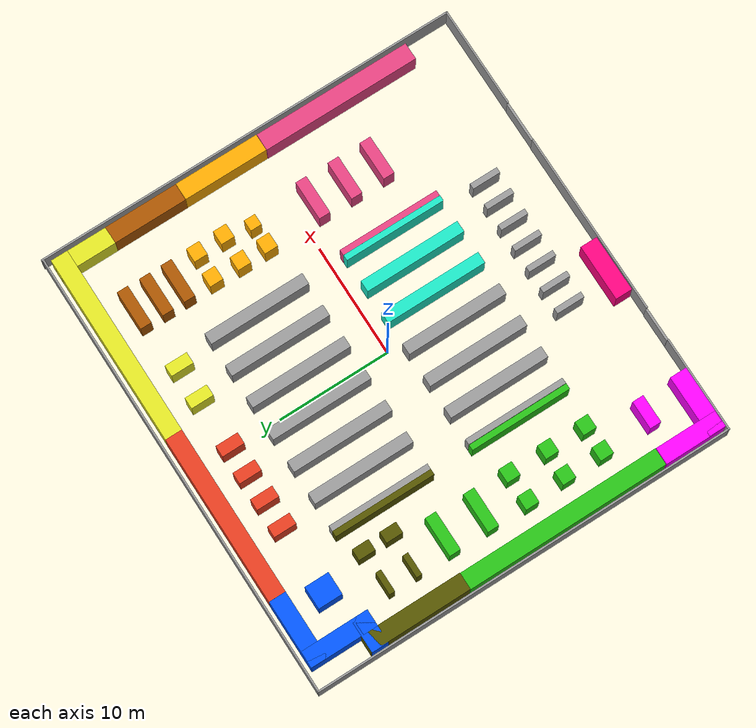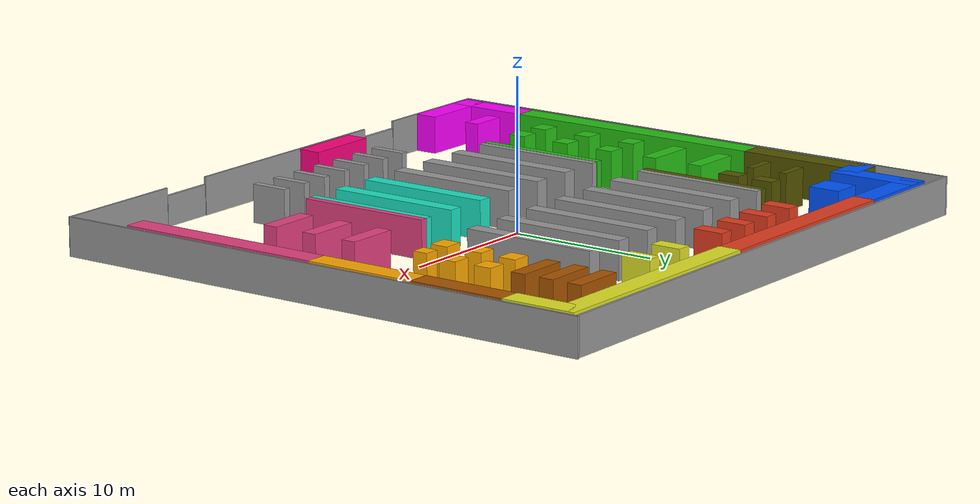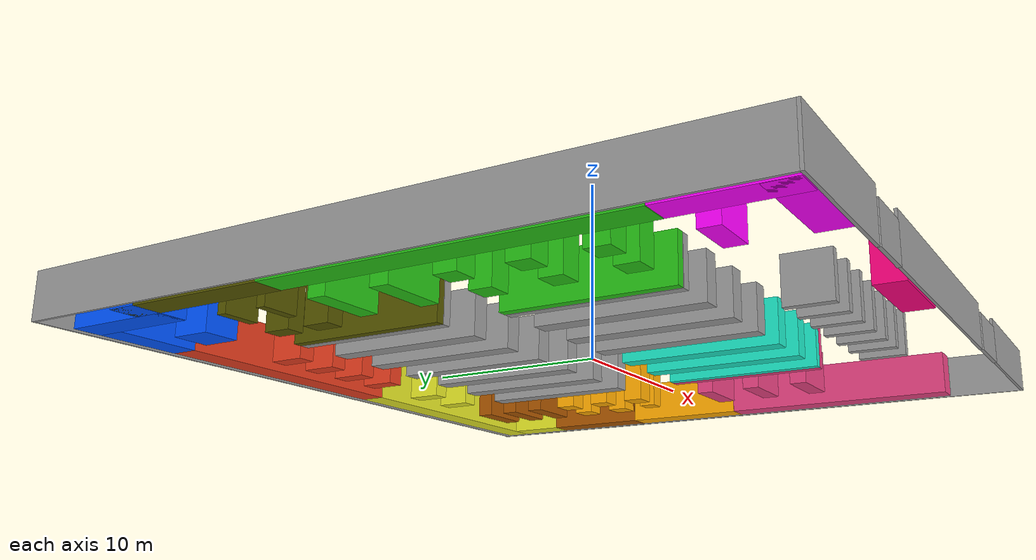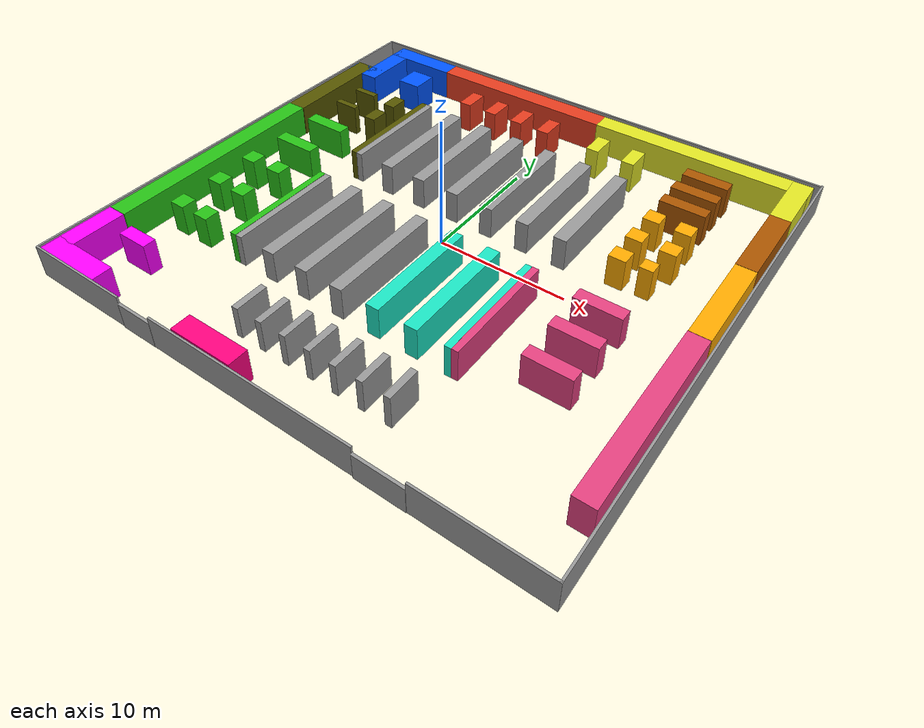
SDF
<?xml version='1.0'?>
<sdf version='1.6'>
  <model name='grocerystore'>
    <pose frame=''>0.320498 0.186481 0 0 -0 0</pose>
    <link name='Door_0'>
      <collision name='Door_0_Collision'>
        <geometry>
          <box>
            <size>2.95862 0.2 2</size>
          </box>
        </geometry>
        <pose frame=''>0 0 1 0 -0 0</pose>
      </collision>
      <visual name='Door_0_Visual'>
        <pose frame=''>0 0 1 0 -0 0</pose>
        <geometry>
          <box>
            <size>2.95862 0.2 2</size>
          </box>
        </geometry>
        <material>
          <script>
            <uri>file://media/materials/scripts/gazebo.material</uri>
            <name>Gazebo/Grey</name>
          </script>
        </material>
      </visual>
      <pose frame=''>-10.1572 -18.8323 0 0 -0 0</pose>
    </link>
    <link name='Door_3'>
      <collision name='Door_3_Collision'>
        <geometry>
          <box>
            <size>3.60628 0.2 2</size>
          </box>
        </geometry>
        <pose frame=''>0 0 1 0 -0 0</pose>
      </collision>
      <visual name='Door_3_Visual'>
        <pose frame=''>0 0 1 0 -0 0</pose>
        <geometry>
          <box>
            <size>3.60628 0.2 2</size>
          </box>
        </geometry>
        <material>
          <script>
            <uri>file://media/materials/scripts/gazebo.material</uri>
            <name>Gazebo/Grey</name>
          </script>
        </material>
      </visual>
      <pose frame=''>9.38661 -18.8926 0 0 -0 0</pose>
    </link>
    <link name='Wall_100'>
      <collision name='Wall_100_Collision'>
        <geometry>
          <box>
            <size>3.5 1 2.5</size>
          </box>
        </geometry>
        <pose frame=''>0 0 1.25 0 -0 0</pose>
      </collision>
      <visual name='Wall_100_Visual'>
        <pose frame=''>0 0 1.25 0 -0 0</pose>
        <geometry>
          <box>
            <size>3.5 1 2.5</size>
          </box>
        </geometry>
        <material>
          <script>
            <uri>file://media/materials/scripts/gazebo.material</uri>
            <name>Gazebo/Grey</name>
          </script>
          <ambient>0.898039 0.254902 0.501961 1</ambient>
        </material>
        <meta>
          <layer>0</layer>
        </meta>
      </visual>
      <pose frame=''>12.9425 -7.67253 0 0 -0 0</pose>
    </link>
    <link name='Wall_102'>
      <collision name='Wall_102_Collision'>
        <geometry>
          <box>
            <size>1.25 1.2 2.5</size>
          </box>
        </geometry>
        <pose frame=''>0 0 1.25 0 -0 0</pose>
      </collision>
      <visual name='Wall_102_Visual'>
        <pose frame=''>0 0 1.25 0 -0 0</pose>
        <geometry>
          <box>
            <size>1.25 1.2 2.5</size>
          </box>
        </geometry>
        <material>
          <script>
            <uri>file://media/materials/scripts/gazebo.material</uri>
            <name>Gazebo/Grey</name>
          </script>
          <ambient>0.152941 0.756863 0.0862745 1</ambient>
        </material>
        <meta>
          <layer>0</layer>
        </meta>
      </visual>
      <pose frame=''>-16.3412 -2.71739 0 0 -0 0</pose>
    </link>
    <link name='Wall_104'>
      <collision name='Wall_104_Collision'>
        <geometry>
          <box>
            <size>1.25 1.2 2.5</size>
          </box>
        </geometry>
        <pose frame=''>0 0 1.25 0 -0 0</pose>
      </collision>
      <visual name='Wall_104_Visual'>
        <pose frame=''>0 0 1.25 0 -0 0</pose>
        <geometry>
          <box>
            <size>1.25 1.2 2.5</size>
          </box>
        </geometry>
        <material>
          <script>
            <uri>file://media/materials/scripts/gazebo.material</uri>
            <name>Gazebo/Grey</name>
          </script>
          <ambient>0.152941 0.756863 0.0862745 1</ambient>
        </material>
        <meta>
          <layer>0</layer>
        </meta>
      </visual>
      <pose frame=''>-13.7856 -2.6616 0 0 -0 0</pose>
    </link>
    <link name='Wall_106'>
      <collision name='Wall_106_Collision'>
        <geometry>
          <box>
            <size>1.25 1.2 2.5</size>
          </box>
        </geometry>
        <pose frame=''>0 0 1.25 0 -0 0</pose>
      </collision>
      <visual name='Wall_106_Visual'>
        <pose frame=''>0 0 1.25 0 -0 0</pose>
        <geometry>
          <box>
            <size>1.25 1.2 2.5</size>
          </box>
        </geometry>
        <material>
          <script>
            <uri>file://media/materials/scripts/gazebo.material</uri>
            <name>Gazebo/Grey</name>
          </script>
          <ambient>0.152941 0.756863 0.0862745 1</ambient>
        </material>
        <meta>
          <layer>0</layer>
        </meta>
      </visual>
      <pose frame=''>-16.2622 -6.17231 0 0 -0 0</pose>
    </link>
    <link name='Wall_108'>
      <collision name='Wall_108_Collision'>
        <geometry>
          <box>
            <size>1.25 1.2 2.5</size>
          </box>
        </geometry>
        <pose frame=''>0 0 1.25 0 -0 0</pose>
      </collision>
      <visual name='Wall_108_Visual'>
        <pose frame=''>0 0 1.25 0 -0 0</pose>
        <geometry>
          <box>
            <size>1.25 1.2 2.5</size>
          </box>
        </geometry>
        <material>
          <script>
            <uri>file://media/materials/scripts/gazebo.material</uri>
            <name>Gazebo/Grey</name>
          </script>
          <ambient>0.152941 0.756863 0.0862745 1</ambient>
        </material>
        <meta>
          <layer>0</layer>
        </meta>
      </visual>
      <pose frame=''>-13.8442 -6.18548 0 0 -0 0</pose>
    </link>
    <link name='Wall_110'>
      <collision name='Wall_110_Collision'>
        <geometry>
          <box>
            <size>1.25 1.2 2.5</size>
          </box>
        </geometry>
        <pose frame=''>0 0 1.25 0 -0 0</pose>
      </collision>
      <visual name='Wall_110_Visual'>
        <pose frame=''>0 0 1.25 0 -0 0</pose>
        <geometry>
          <box>
            <size>1.25 1.2 2.5</size>
          </box>
        </geometry>
        <material>
          <script>
            <uri>file://media/materials/scripts/gazebo.material</uri>
            <name>Gazebo/Grey</name>
          </script>
          <ambient>0.152941 0.756863 0.0862745 1</ambient>
        </material>
        <meta>
          <layer>0</layer>
        </meta>
      </visual>
      <pose frame=''>-16.2411 -9.66304 0 0 -0 0</pose>
    </link>
    <link name='Wall_112'>
      <collision name='Wall_112_Collision'>
        <geometry>
          <box>
            <size>1.25 1.2 2.5</size>
          </box>
        </geometry>
        <pose frame=''>0 0 1.25 0 -0 0</pose>
      </collision>
      <visual name='Wall_112_Visual'>
        <pose frame=''>0 0 1.25 0 -0 0</pose>
        <geometry>
          <box>
            <size>1.25 1.2 2.5</size>
          </box>
        </geometry>
        <material>
          <script>
            <uri>file://media/materials/scripts/gazebo.material</uri>
            <name>Gazebo/Grey</name>
          </script>
          <ambient>0.152941 0.756863 0.0862745 1</ambient>
        </material>
        <meta>
          <layer>0</layer>
        </meta>
      </visual>
      <pose frame=''>-13.8543 -9.66304 0 0 -0 0</pose>
    </link>
    <link name='Wall_114'>
      <collision name='Wall_114_Collision'>
        <geometry>
          <box>
            <size>2 0.5 2.5</size>
          </box>
        </geometry>
        <pose frame=''>0 0 1.25 0 -0 0</pose>
      </collision>
      <visual name='Wall_114_Visual'>
        <pose frame=''>0 0 1.25 0 -0 0</pose>
        <geometry>
          <box>
            <size>2 0.5 2.5</size>
          </box>
        </geometry>
        <material>
          <script>
            <uri>file://media/materials/scripts/gazebo.material</uri>
            <name>Gazebo/Grey</name>
          </script>
          <ambient>0.333333 0.333333 0 1</ambient>
        </material>
        <meta>
          <layer>0</layer>
        </meta>
      </visual>
      <pose frame=''>-15.8039 10.0223 0 0 -0 0</pose>
    </link>
    <link name='Wall_116'>
      <collision name='Wall_116_Collision'>
        <geometry>
          <box>
            <size>2 0.5 2.5</size>
          </box>
        </geometry>
        <pose frame=''>0 0 1.25 0 -0 0</pose>
      </collision>
      <visual name='Wall_116_Visual'>
        <pose frame=''>0 0 1.25 0 -0 0</pose>
        <geometry>
          <box>
            <size>2 0.5 2.5</size>
          </box>
        </geometry>
        <material>
          <script>
            <uri>file://media/materials/scripts/gazebo.material</uri>
            <name>Gazebo/Grey</name>
          </script>
          <ambient>0.333333 0.333333 0 1</ambient>
        </material>
        <meta>
          <layer>0</layer>
        </meta>
      </visual>
      <pose frame=''>-15.8161 7.56672 0 0 -0 0</pose>
    </link>
    <link name='Wall_118'>
      <collision name='Wall_118_Collision'>
        <geometry>
          <box>
            <size>3.5 1 2.5</size>
          </box>
        </geometry>
        <pose frame=''>0 0 1.25 0 -0 0</pose>
      </collision>
      <visual name='Wall_118_Visual'>
        <pose frame=''>0 0 1.25 0 -0 0</pose>
        <geometry>
          <box>
            <size>3.5 1 2.5</size>
          </box>
        </geometry>
        <material>
          <script>
            <uri>file://media/materials/scripts/gazebo.material</uri>
            <name>Gazebo/Grey</name>
          </script>
          <ambient>0.152941 0.756863 0.0862745 1</ambient>
        </material>
        <meta>
          <layer>0</layer>
        </meta>
      </visual>
      <pose frame=''>-15.0477 4.28532 0 0 -0 0</pose>
    </link>
    <link name='Wall_120'>
      <collision name='Wall_120_Collision'>
        <geometry>
          <box>
            <size>3.5 1 2.5</size>
          </box>
        </geometry>
        <pose frame=''>0 0 1.25 0 -0 0</pose>
      </collision>
      <visual name='Wall_120_Visual'>
        <pose frame=''>0 0 1.25 0 -0 0</pose>
        <geometry>
          <box>
            <size>3.5 1 2.5</size>
          </box>
        </geometry>
        <material>
          <script>
            <uri>file://media/materials/scripts/gazebo.material</uri>
            <name>Gazebo/Grey</name>
          </script>
          <ambient>0.152941 0.756863 0.0862745 1</ambient>
        </material>
        <meta>
          <layer>0</layer>
        </meta>
      </visual>
      <pose frame=''>-15.0731 0.795287 0 0 -0 0</pose>
    </link>
    <link name='Wall_122'>
      <collision name='Wall_122_Collision'>
        <geometry>
          <box>
            <size>1.25 1.2 2.5</size>
          </box>
        </geometry>
        <pose frame=''>0 0 1.25 0 -0 0</pose>
      </collision>
      <visual name='Wall_122_Visual'>
        <pose frame=''>0 0 1.25 0 -0 0</pose>
        <geometry>
          <box>
            <size>1.25 1.2 2.5</size>
          </box>
        </geometry>
        <material>
          <script>
            <uri>file://media/materials/scripts/gazebo.material</uri>
            <name>Gazebo/Grey</name>
          </script>
          <ambient>1 0.666667 0 1</ambient>
        </material>
        <meta>
          <layer>0</layer>
        </meta>
      </visual>
      <pose frame=''>11.7763 8.35435 0 0 -0 0</pose>
    </link>
    <link name='Wall_124'>
      <collision name='Wall_124_Collision'>
        <geometry>
          <box>
            <size>1.25 1.2 2.5</size>
          </box>
        </geometry>
        <pose frame=''>0 0 1.25 0 -0 0</pose>
      </collision>
      <visual name='Wall_124_Visual'>
        <pose frame=''>0 0 1.25 0 -0 0</pose>
        <geometry>
          <box>
            <size>1.25 1.2 2.5</size>
          </box>
        </geometry>
        <material>
          <script>
            <uri>file://media/materials/scripts/gazebo.material</uri>
            <name>Gazebo/Grey</name>
          </script>
          <ambient>1 0.666667 0 1</ambient>
        </material>
        <meta>
          <layer>0</layer>
        </meta>
      </visual>
      <pose frame=''>11.7173 5.81015 0 0 -0 0</pose>
    </link>
    <link name='Wall_126'>
      <collision name='Wall_126_Collision'>
        <geometry>
          <box>
            <size>1.30033 1.2 2.5</size>
          </box>
        </geometry>
        <pose frame=''>0 0 1.25 0 -0 0</pose>
      </collision>
      <visual name='Wall_126_Visual'>
        <pose frame=''>0 0 1.25 0 -0 0</pose>
        <geometry>
          <box>
            <size>1.30033 1.2 2.5</size>
          </box>
        </geometry>
        <material>
          <script>
            <uri>file://media/materials/scripts/gazebo.material</uri>
            <name>Gazebo/Grey</name>
          </script>
          <ambient>1 0.666667 0 1</ambient>
        </material>
        <meta>
          <layer>0</layer>
        </meta>
      </visual>
      <pose frame=''>11.7455 3.34252 0 0 -0 0</pose>
    </link>
    <link name='Wall_128'>
      <collision name='Wall_128_Collision'>
        <geometry>
          <box>
            <size>1.25 1.2 2.5</size>
          </box>
        </geometry>
        <pose frame=''>0 0 1.25 0 -0 0</pose>
      </collision>
      <visual name='Wall_128_Visual'>
        <pose frame=''>0 0 1.25 0 -0 0</pose>
        <geometry>
          <box>
            <size>1.25 1.2 2.5</size>
          </box>
        </geometry>
        <material>
          <script>
            <uri>file://media/materials/scripts/gazebo.material</uri>
            <name>Gazebo/Grey</name>
          </script>
          <ambient>1 0.666667 0 1</ambient>
        </material>
        <meta>
          <layer>0</layer>
        </meta>
      </visual>
      <pose frame=''>14.1431 8.31789 0 0 -0 0</pose>
    </link>
    <link name='Wall_130'>
      <collision name='Wall_130_Collision'>
        <geometry>
          <box>
            <size>1.25 1.2 2.5</size>
          </box>
        </geometry>
        <pose frame=''>0 0 1.25 0 -0 0</pose>
      </collision>
      <visual name='Wall_130_Visual'>
        <pose frame=''>0 0 1.25 0 -0 0</pose>
        <geometry>
          <box>
            <size>1.25 1.2 2.5</size>
          </box>
        </geometry>
        <material>
          <script>
            <uri>file://media/materials/scripts/gazebo.material</uri>
            <name>Gazebo/Grey</name>
          </script>
          <ambient>1 0.666667 0 1</ambient>
        </material>
        <meta>
          <layer>0</layer>
        </meta>
      </visual>
      <pose frame=''>14.2035 5.79689 0 0 -0 0</pose>
    </link>
    <link name='Wall_132'>
      <collision name='Wall_132_Collision'>
        <geometry>
          <box>
            <size>1 1 2.5</size>
          </box>
        </geometry>
        <pose frame=''>0 0 1.25 0 -0 0</pose>
      </collision>
      <visual name='Wall_132_Visual'>
        <pose frame=''>0 0 1.25 0 -0 0</pose>
        <geometry>
          <box>
            <size>1 1 2.5</size>
          </box>
        </geometry>
        <material>
          <script>
            <uri>file://media/materials/scripts/gazebo.material</uri>
            <name>Gazebo/Grey</name>
          </script>
          <ambient>1 0.666667 0 1</ambient>
        </material>
        <meta>
          <layer>0</layer>
        </meta>
      </visual>
      <pose frame=''>13.7675 3.38052 0 0 -0 0</pose>
    </link>
    <link name='Wall_134'>
      <collision name='Wall_134_Collision'>
        <geometry>
          <box>
            <size>3.5 1 2.5</size>
          </box>
        </geometry>
        <pose frame=''>0 0 1.25 0 -0 0</pose>
      </collision>
      <visual name='Wall_134_Visual'>
        <pose frame=''>0 0 1.25 0 -0 0</pose>
        <geometry>
          <box>
            <size>3.5 1 2.5</size>
          </box>
        </geometry>
        <material>
          <script>
            <uri>file://media/materials/scripts/gazebo.material</uri>
            <name>Gazebo/Grey</name>
          </script>
          <ambient>0.666667 0.333333 0 1</ambient>
        </material>
        <meta>
          <layer>0</layer>
        </meta>
      </visual>
      <pose frame=''>12.959 14.8164 0 0 -0 0</pose>
    </link>
    <link name='Wall_136'>
      <collision name='Wall_136_Collision'>
        <geometry>
          <box>
            <size>3.5 1 2.5</size>
          </box>
        </geometry>
        <pose frame=''>0 0 1.25 0 -0 0</pose>
      </collision>
      <visual name='Wall_136_Visual'>
        <pose frame=''>0 0 1.25 0 -0 0</pose>
        <geometry>
          <box>
            <size>3.5 1 2.5</size>
          </box>
        </geometry>
        <material>
          <script>
            <uri>file://media/materials/scripts/gazebo.material</uri>
            <name>Gazebo/Grey</name>
          </script>
          <ambient>0.666667 0.333333 0 1</ambient>
        </material>
        <meta>
          <layer>0</layer>
        </meta>
      </visual>
      <pose frame=''>12.9359 12.8046 0 0 -0 0</pose>
    </link>
    <link name='Wall_138'>
      <collision name='Wall_138_Collision'>
        <geometry>
          <box>
            <size>3.5 1 2.5</size>
          </box>
        </geometry>
        <pose frame=''>0 0 1.25 0 -0 0</pose>
      </collision>
      <visual name='Wall_138_Visual'>
        <pose frame=''>0 0 1.25 0 -0 0</pose>
        <geometry>
          <box>
            <size>3.5 1 2.5</size>
          </box>
        </geometry>
        <material>
          <script>
            <uri>file://media/materials/scripts/gazebo.material</uri>
            <name>Gazebo/Grey</name>
          </script>
          <ambient>0.666667 0.333333 0 1</ambient>
        </material>
        <meta>
          <layer>0</layer>
        </meta>
      </visual>
      <pose frame=''>12.949 10.8159 0 0 -0 0</pose>
    </link>
    <link name='Wall_140'>
      <collision name='Wall_140_Collision'>
        <geometry>
          <box>
            <size>2 1 2.5</size>
          </box>
        </geometry>
        <pose frame=''>0 0 1.25 0 -0 0</pose>
      </collision>
      <visual name='Wall_140_Visual'>
        <pose frame=''>0 0 1.25 0 -0 0</pose>
        <geometry>
          <box>
            <size>2 1 2.5</size>
          </box>
        </geometry>
        <material>
          <script>
            <uri>file://media/materials/scripts/gazebo.material</uri>
            <name>Gazebo/Grey</name>
          </script>
          <ambient>0.898039 0.239216 0.121569 1</ambient>
        </material>
        <meta>
          <layer>0</layer>
        </meta>
      </visual>
      <pose frame=''>-7.80032 14.3132 0 0 -0 -1.5708</pose>
    </link>
    <link name='Wall_142'>
      <collision name='Wall_142_Collision'>
        <geometry>
          <box>
            <size>2 1 2.5</size>
          </box>
        </geometry>
        <pose frame=''>0 0 1.25 0 -0 0</pose>
      </collision>
      <visual name='Wall_142_Visual'>
        <pose frame=''>0 0 1.25 0 -0 0</pose>
        <geometry>
          <box>
            <size>2 1 2.5</size>
          </box>
        </geometry>
        <material>
          <script>
            <uri>file://media/materials/scripts/gazebo.material</uri>
            <name>Gazebo/Grey</name>
          </script>
          <ambient>0.898039 0.239216 0.121569 1</ambient>
        </material>
        <meta>
          <layer>0</layer>
        </meta>
      </visual>
      <pose frame=''>-5.29905 14.3001 0 0 -0 -1.5708</pose>
    </link>
    <link name='Wall_144'>
      <collision name='Wall_144_Collision'>
        <geometry>
          <box>
            <size>2 1 2.5</size>
          </box>
        </geometry>
        <pose frame=''>0 0 1.25 0 -0 0</pose>
      </collision>
      <visual name='Wall_144_Visual'>
        <pose frame=''>0 0 1.25 0 -0 0</pose>
        <geometry>
          <box>
            <size>2 1 2.5</size>
          </box>
        </geometry>
        <material>
          <script>
            <uri>file://media/materials/scripts/gazebo.material</uri>
            <name>Gazebo/Grey</name>
          </script>
          <ambient>0.898039 0.239216 0.121569 1</ambient>
        </material>
        <meta>
          <layer>0</layer>
        </meta>
      </visual>
      <pose frame=''>-2.82402 14.3306 0 0 -0 -1.5708</pose>
    </link>
    <link name='Wall_146'>
      <collision name='Wall_146_Collision'>
        <geometry>
          <box>
            <size>2 1 2.5</size>
          </box>
        </geometry>
        <pose frame=''>0 0 1.25 0 -0 0</pose>
      </collision>
      <visual name='Wall_146_Visual'>
        <pose frame=''>0 0 1.25 0 -0 0</pose>
        <geometry>
          <box>
            <size>2 1 2.5</size>
          </box>
        </geometry>
        <material>
          <script>
            <uri>file://media/materials/scripts/gazebo.material</uri>
            <name>Gazebo/Grey</name>
          </script>
          <ambient>0.898039 0.239216 0.121569 1</ambient>
        </material>
        <meta>
          <layer>0</layer>
        </meta>
      </visual>
      <pose frame=''>-0.319498 14.3165 0 0 -0 -1.5708</pose>
    </link>
    <link name='Wall_148'>
      <collision name='Wall_148_Collision'>
        <geometry>
          <box>
            <size>2.15 2 2.5</size>
          </box>
        </geometry>
        <pose frame=''>0 0 1.25 0 -0 0</pose>
      </collision>
      <visual name='Wall_148_Visual'>
        <pose frame=''>0 0 1.25 0 -0 0</pose>
        <geometry>
          <box>
            <size>2.15 2 2.5</size>
          </box>
        </geometry>
        <material>
          <script>
            <uri>file://media/materials/scripts/gazebo.material</uri>
            <name>Gazebo/Grey</name>
          </script>
          <ambient>0 0.333333 1 1</ambient>
        </material>
        <meta>
          <layer>0</layer>
        </meta>
      </visual>
      <pose frame=''>-13.8044 14.3361 0 0 -0 1.5708</pose>
    </link>
    <link name='Wall_150'>
      <collision name='Wall_150_Collision'>
        <geometry>
          <box>
            <size>6 1.5 2.5</size>
          </box>
        </geometry>
        <pose frame=''>0 0 1.25 0 -0 0</pose>
      </collision>
      <visual name='Wall_150_Visual'>
        <pose frame=''>0 0 1.25 0 -0 0</pose>
        <geometry>
          <box>
            <size>6 1.5 2.5</size>
          </box>
        </geometry>
        <material>
          <script>
            <uri>file://media/materials/scripts/gazebo.material</uri>
            <name>Gazebo/Grey</name>
          </script>
          <ambient>0 0.333333 1 1</ambient>
        </material>
        <meta>
          <layer>0</layer>
        </meta>
      </visual>
      <pose frame=''>-15.3012 17.5689 0 0 -0 0</pose>
    </link>
    <link name='Wall_152'>
      <collision name='Wall_152_Collision'>
        <geometry>
          <box>
            <size>15 1.5 2.5</size>
          </box>
        </geometry>
        <pose frame=''>0 0 1.25 0 -0 0</pose>
      </collision>
      <visual name='Wall_152_Visual'>
        <pose frame=''>0 0 1.25 0 -0 0</pose>
        <geometry>
          <box>
            <size>15 1.5 2.5</size>
          </box>
        </geometry>
        <material>
          <script>
            <uri>file://media/materials/scripts/gazebo.material</uri>
            <name>Gazebo/Grey</name>
          </script>
          <ambient>0.898039 0.239216 0.121569 1</ambient>
        </material>
        <meta>
          <layer>0</layer>
        </meta>
      </visual>
      <pose frame=''>-4.79764 17.5741 0 0 -0 0</pose>
    </link>
    <link name='Wall_154'>
      <collision name='Wall_154_Collision'>
        <geometry>
          <box>
            <size>17 1.5 2.5</size>
          </box>
        </geometry>
        <pose frame=''>0 0 1.25 0 -0 0</pose>
      </collision>
      <visual name='Wall_154_Visual'>
        <pose frame=''>0 0 1.25 0 -0 0</pose>
        <geometry>
          <box>
            <size>17 1.5 2.5</size>
          </box>
        </geometry>
        <material>
          <script>
            <uri>file://media/materials/scripts/gazebo.material</uri>
            <name>Gazebo/Grey</name>
          </script>
          <ambient>0.886275 0.898039 0.145098 1</ambient>
        </material>
        <meta>
          <layer>0</layer>
        </meta>
      </visual>
      <pose frame=''>11.1877 17.5699 0 0 -0 0</pose>
    </link>
    <link name='Wall_156'>
      <collision name='Wall_156_Collision'>
        <geometry>
          <box>
            <size>2 1 2.5</size>
          </box>
        </geometry>
        <pose frame=''>0 0 1.25 0 -0 0</pose>
      </collision>
      <visual name='Wall_156_Visual'>
        <pose frame=''>0 0 1.25 0 -0 0</pose>
        <geometry>
          <box>
            <size>2 1 2.5</size>
          </box>
        </geometry>
        <material>
          <script>
            <uri>file://media/materials/scripts/gazebo.material</uri>
            <name>Gazebo/Grey</name>
          </script>
          <ambient>0.886275 0.898039 0.145098 1</ambient>
        </material>
        <meta>
          <layer>0</layer>
        </meta>
      </visual>
      <pose frame=''>4.19115 14.3173 0 0 -0 -1.5708</pose>
    </link>
    <link name='Wall_158'>
      <collision name='Wall_158_Collision'>
        <geometry>
          <box>
            <size>2 1 2.5</size>
          </box>
        </geometry>
        <pose frame=''>0 0 1.25 0 -0 0</pose>
      </collision>
      <visual name='Wall_158_Visual'>
        <pose frame=''>0 0 1.25 0 -0 0</pose>
        <geometry>
          <box>
            <size>2 1 2.5</size>
          </box>
        </geometry>
        <material>
          <script>
            <uri>file://media/materials/scripts/gazebo.material</uri>
            <name>Gazebo/Grey</name>
          </script>
          <ambient>0.886275 0.898039 0.145098 1</ambient>
        </material>
        <meta>
          <layer>0</layer>
        </meta>
      </visual>
      <pose frame=''>7.20778 14.2689 0 0 -0 1.5708</pose>
    </link>
    <link name='Wall_160'>
      <collision name='Wall_160_Collision'>
        <geometry>
          <box>
            <size>5 1.5 2.5</size>
          </box>
        </geometry>
        <pose frame=''>0 0 1.25 0 -0 0</pose>
      </collision>
      <visual name='Wall_160_Visual'>
        <pose frame=''>0 0 1.25 0 -0 0</pose>
        <geometry>
          <box>
            <size>5 1.5 2.5</size>
          </box>
        </geometry>
        <material>
          <script>
            <uri>file://media/materials/scripts/gazebo.material</uri>
            <name>Gazebo/Grey</name>
          </script>
          <ambient>0.886275 0.898039 0.145098 1</ambient>
        </material>
        <meta>
          <layer>0</layer>
        </meta>
      </visual>
      <pose frame=''>18.9255 15.8199 0 0 -0 -1.5708</pose>
    </link>
    <link name='Wall_162'>
      <collision name='Wall_162_Collision'>
        <geometry>
          <box>
            <size>6.5 1.5 2.5</size>
          </box>
        </geometry>
        <pose frame=''>0 0 1.25 0 -0 0</pose>
      </collision>
      <visual name='Wall_162_Visual'>
        <pose frame=''>0 0 1.25 0 -0 0</pose>
        <geometry>
          <box>
            <size>6.5 1.5 2.5</size>
          </box>
        </geometry>
        <material>
          <script>
            <uri>file://media/materials/scripts/gazebo.material</uri>
            <name>Gazebo/Grey</name>
          </script>
          <ambient>0.666667 0.333333 0 1</ambient>
        </material>
        <meta>
          <layer>0</layer>
        </meta>
      </visual>
      <pose frame=''>18.9407 10.0836 0 0 -0 -1.5708</pose>
    </link>
    <link name='Wall_164'>
      <collision name='Wall_164_Collision'>
        <geometry>
          <box>
            <size>7.5 1.5 2.5</size>
          </box>
        </geometry>
        <pose frame=''>0 0 1.25 0 -0 0</pose>
      </collision>
      <visual name='Wall_164_Visual'>
        <pose frame=''>0 0 1.25 0 -0 0</pose>
        <geometry>
          <box>
            <size>7.5 1.5 2.5</size>
          </box>
        </geometry>
        <material>
          <script>
            <uri>file://media/materials/scripts/gazebo.material</uri>
            <name>Gazebo/Grey</name>
          </script>
          <ambient>1 0.666667 0 1</ambient>
        </material>
        <meta>
          <layer>0</layer>
        </meta>
      </visual>
      <pose frame=''>18.9542 3.06135 0 0 -0 -1.5708</pose>
    </link>
    <link name='Wall_166'>
      <collision name='Wall_166_Collision'>
        <geometry>
          <box>
            <size>14 1.5 2.5</size>
          </box>
        </geometry>
        <pose frame=''>0 0 1.25 0 -0 0</pose>
      </collision>
      <visual name='Wall_166_Visual'>
        <pose frame=''>0 0 1.25 0 -0 0</pose>
        <geometry>
          <box>
            <size>14 1.5 2.5</size>
          </box>
        </geometry>
        <material>
          <script>
            <uri>file://media/materials/scripts/gazebo.material</uri>
            <name>Gazebo/Grey</name>
          </script>
          <ambient>0.898039 0.254902 0.501961 1</ambient>
        </material>
        <meta>
          <layer>0</layer>
        </meta>
      </visual>
      <pose frame=''>18.9333 -7.70582 0 0 -0 -1.5708</pose>
    </link>
    <link name='Wall_168'>
      <collision name='Wall_168_Collision'>
        <geometry>
          <box>
            <size>5.5 1.5 2.5</size>
          </box>
        </geometry>
        <pose frame=''>0 0 1.25 0 -0 0</pose>
      </collision>
      <visual name='Wall_168_Visual'>
        <pose frame=''>0 0 1.25 0 -0 0</pose>
        <geometry>
          <box>
            <size>5.5 1.5 2.5</size>
          </box>
        </geometry>
        <material>
          <script>
            <uri>file://media/materials/scripts/gazebo.material</uri>
            <name>Gazebo/Grey</name>
          </script>
          <ambient>1 0 1 1</ambient>
        </material>
        <meta>
          <layer>0</layer>
        </meta>
      </visual>
      <pose frame=''>-19.0845 -15.9417 0 0 -0 -1.5708</pose>
    </link>
    <link name='Wall_170'>
      <collision name='Wall_170_Collision'>
        <geometry>
          <box>
            <size>5.5 1.5 2.5</size>
          </box>
        </geometry>
        <pose frame=''>0 0 1.25 0 -0 0</pose>
      </collision>
      <visual name='Wall_170_Visual'>
        <pose frame=''>0 0 1.25 0 -0 0</pose>
        <geometry>
          <box>
            <size>5.5 1.5 2.5</size>
          </box>
        </geometry>
        <material>
          <script>
            <uri>file://media/materials/scripts/gazebo.material</uri>
            <name>Gazebo/Grey</name>
          </script>
          <ambient>1 0 1 1</ambient>
        </material>
        <meta>
          <layer>0</layer>
        </meta>
      </visual>
      <pose frame=''>-17.0447 -17.9825 0 0 -0 0</pose>
    </link>
    <link name='Wall_172'>
      <collision name='Wall_172_Collision'>
        <geometry>
          <box>
            <size>18 1.5 2.5</size>
          </box>
        </geometry>
        <pose frame=''>0 0 1.25 0 -0 0</pose>
      </collision>
      <visual name='Wall_172_Visual'>
        <pose frame=''>0 0 1.25 0 -0 0</pose>
        <geometry>
          <box>
            <size>18 1.5 2.5</size>
          </box>
        </geometry>
        <material>
          <script>
            <uri>file://media/materials/scripts/gazebo.material</uri>
            <name>Gazebo/Grey</name>
          </script>
          <ambient>0.152941 0.756863 0.0862745 1</ambient>
        </material>
        <meta>
          <layer>0</layer>
        </meta>
      </visual>
      <pose frame=''>-19.0641 -4.16608 0 0 -0 1.5708</pose>
    </link>
    <link name='Wall_174'>
      <collision name='Wall_174_Collision'>
        <geometry>
          <box>
            <size>9 1.5 2.5</size>
          </box>
        </geometry>
        <pose frame=''>0 0 1.25 0 -0 0</pose>
      </collision>
      <visual name='Wall_174_Visual'>
        <pose frame=''>0 0 1.25 0 -0 0</pose>
        <geometry>
          <box>
            <size>9 1.5 2.5</size>
          </box>
        </geometry>
        <material>
          <script>
            <uri>file://media/materials/scripts/gazebo.material</uri>
            <name>Gazebo/Grey</name>
          </script>
          <ambient>0.333333 0.333333 0 1</ambient>
        </material>
        <meta>
          <layer>0</layer>
        </meta>
      </visual>
      <pose frame=''>-19.0315 9.32412 0 0 -0 1.5708</pose>
    </link>
    <link name='Wall_176'>
      <collision name='Wall_176_Collision'>
        <geometry>
          <box>
            <size>2.5 0.5 2.5</size>
          </box>
        </geometry>
        <pose frame=''>0 0 1.25 0 -0 0</pose>
      </collision>
      <visual name='Wall_176_Visual'>
        <pose frame=''>0 0 1.25 0 -0 0</pose>
        <geometry>
          <box>
            <size>2.5 0.5 2.5</size>
          </box>
        </geometry>
        <material>
          <script>
            <uri>file://media/materials/scripts/gazebo.material</uri>
            <name>Gazebo/Grey</name>
          </script>
          <ambient>0.454902 0.415686 0.407843 1</ambient>
        </material>
        <meta>
          <layer>0</layer>
        </meta>
      </visual>
      <pose frame=''>-5.06369 -13.9412 0 0 -0 -1.5708</pose>
    </link>
    <link name='Wall_178'>
      <collision name='Wall_178_Collision'>
        <geometry>
          <box>
            <size>2.5 0.5 2.5</size>
          </box>
        </geometry>
        <pose frame=''>0 0 1.25 0 -0 0</pose>
      </collision>
      <visual name='Wall_178_Visual'>
        <pose frame=''>0 0 1.25 0 -0 0</pose>
        <geometry>
          <box>
            <size>2.5 0.5 2.5</size>
          </box>
        </geometry>
        <material>
          <script>
            <uri>file://media/materials/scripts/gazebo.material</uri>
            <name>Gazebo/Grey</name>
          </script>
          <ambient>0.454902 0.415686 0.407843 1</ambient>
        </material>
        <meta>
          <layer>0</layer>
        </meta>
      </visual>
      <pose frame=''>-3.05981 -13.9438 0 0 -0 -1.5708</pose>
    </link>
    <link name='Wall_180'>
      <collision name='Wall_180_Collision'>
        <geometry>
          <box>
            <size>2.5 0.5 2.5</size>
          </box>
        </geometry>
        <pose frame=''>0 0 1.25 0 -0 0</pose>
      </collision>
      <visual name='Wall_180_Visual'>
        <pose frame=''>0 0 1.25 0 -0 0</pose>
        <geometry>
          <box>
            <size>2.5 0.5 2.5</size>
          </box>
        </geometry>
        <material>
          <script>
            <uri>file://media/materials/scripts/gazebo.material</uri>
            <name>Gazebo/Grey</name>
          </script>
          <ambient>0.454902 0.415686 0.407843 1</ambient>
        </material>
        <meta>
          <layer>0</layer>
        </meta>
      </visual>
      <pose frame=''>-1.07101 -13.9357 0 0 -0 -1.5708</pose>
    </link>
    <link name='Wall_182'>
      <collision name='Wall_182_Collision'>
        <geometry>
          <box>
            <size>2.5 0.5 2.5</size>
          </box>
        </geometry>
        <pose frame=''>0 0 1.25 0 -0 0</pose>
      </collision>
      <visual name='Wall_182_Visual'>
        <pose frame=''>0 0 1.25 0 -0 0</pose>
        <geometry>
          <box>
            <size>2.5 0.5 2.5</size>
          </box>
        </geometry>
        <material>
          <script>
            <uri>file://media/materials/scripts/gazebo.material</uri>
            <name>Gazebo/Grey</name>
          </script>
          <ambient>0.454902 0.415686 0.407843 1</ambient>
        </material>
        <meta>
          <layer>0</layer>
        </meta>
      </visual>
      <pose frame=''>0.929747 -13.9336 0 0 -0 -1.5708</pose>
    </link>
    <link name='Wall_184'>
      <collision name='Wall_184_Collision'>
        <geometry>
          <box>
            <size>2.5 0.5 2.5</size>
          </box>
        </geometry>
        <pose frame=''>0 0 1.25 0 -0 0</pose>
      </collision>
      <visual name='Wall_184_Visual'>
        <pose frame=''>0 0 1.25 0 -0 0</pose>
        <geometry>
          <box>
            <size>2.5 0.5 2.5</size>
          </box>
        </geometry>
        <material>
          <script>
            <uri>file://media/materials/scripts/gazebo.material</uri>
            <name>Gazebo/Grey</name>
          </script>
          <ambient>0.454902 0.415686 0.407843 1</ambient>
        </material>
        <meta>
          <layer>0</layer>
        </meta>
      </visual>
      <pose frame=''>2.93638 -13.9487 0 0 -0 -1.5708</pose>
    </link>
    <link name='Wall_186'>
      <collision name='Wall_186_Collision'>
        <geometry>
          <box>
            <size>2.5 0.5 2.5</size>
          </box>
        </geometry>
        <pose frame=''>0 0 1.25 0 -0 0</pose>
      </collision>
      <visual name='Wall_186_Visual'>
        <pose frame=''>0 0 1.25 0 -0 0</pose>
        <geometry>
          <box>
            <size>2.5 0.5 2.5</size>
          </box>
        </geometry>
        <material>
          <script>
            <uri>file://media/materials/scripts/gazebo.material</uri>
            <name>Gazebo/Grey</name>
          </script>
          <ambient>0.454902 0.415686 0.407843 1</ambient>
        </material>
        <meta>
          <layer>0</layer>
        </meta>
      </visual>
      <pose frame=''>4.9425 -13.946 0 0 -0 -1.5708</pose>
    </link>
    <link name='Wall_188'>
      <collision name='Wall_188_Collision'>
        <geometry>
          <box>
            <size>2.5 0.5 2.5</size>
          </box>
        </geometry>
        <pose frame=''>0 0 1.25 0 -0 0</pose>
      </collision>
      <visual name='Wall_188_Visual'>
        <pose frame=''>0 0 1.25 0 -0 0</pose>
        <geometry>
          <box>
            <size>2.5 0.5 2.5</size>
          </box>
        </geometry>
        <material>
          <script>
            <uri>file://media/materials/scripts/gazebo.material</uri>
            <name>Gazebo/Grey</name>
          </script>
          <ambient>0.454902 0.415686 0.407843 1</ambient>
        </material>
        <meta>
          <layer>0</layer>
        </meta>
      </visual>
      <pose frame=''>6.94106 -13.9362 0 0 -0 -1.5708</pose>
    </link>
    <link name='Wall_194'>
      <collision name='Wall_194_Collision'>
        <geometry>
          <box>
            <size>3 1.5 2.5</size>
          </box>
        </geometry>
        <pose frame=''>0 0 1.25 0 -0 0</pose>
      </collision>
      <visual name='Wall_194_Visual'>
        <pose frame=''>0 0 1.25 0 -0 0</pose>
        <geometry>
          <box>
            <size>3 1.5 2.5</size>
          </box>
        </geometry>
        <material>
          <script>
            <uri>file://media/materials/scripts/gazebo.material</uri>
            <name>Gazebo/Grey</name>
          </script>
          <ambient>0 0.333333 1 1</ambient>
        </material>
        <meta>
          <layer>0</layer>
        </meta>
      </visual>
      <pose frame=''>-18.3249 13.0505 0 0 -0 0</pose>
    </link>
    <link name='Wall_196'>
      <collision name='Wall_196_Collision'>
        <geometry>
          <box>
            <size>9 0.5 2.5</size>
          </box>
        </geometry>
        <pose frame=''>0 0 1.25 0 -0 0</pose>
      </collision>
      <visual name='Wall_196_Visual'>
        <pose frame=''>0 0 1.25 0 -0 0</pose>
        <geometry>
          <box>
            <size>9 0.5 2.5</size>
          </box>
        </geometry>
        <material>
          <script>
            <uri>file://media/materials/scripts/gazebo.material</uri>
            <name>Gazebo/Grey</name>
          </script>
          <ambient>0.333333 0.333333 0 1</ambient>
        </material>
        <meta>
          <layer>0</layer>
        </meta>
      </visual>
      <pose frame=''>-10.5543 6.81521 0 0 -0 1.5708</pose>
    </link>
    <link name='Wall_198'>
      <collision name='Wall_198_Collision'>
        <geometry>
          <box>
            <size>9 0.5 2.5</size>
          </box>
        </geometry>
        <pose frame=''>0 0 1.25 0 -0 0</pose>
      </collision>
      <visual name='Wall_198_Visual'>
        <pose frame=''>0 0 1.25 0 -0 0</pose>
        <geometry>
          <box>
            <size>9 0.5 2.5</size>
          </box>
        </geometry>
        <material>
          <script>
            <uri>file://media/materials/scripts/gazebo.material</uri>
            <name>Gazebo/Grey</name>
          </script>
          <ambient>0.454902 0.415686 0.407843 1</ambient>
        </material>
        <meta>
          <layer>0</layer>
        </meta>
      </visual>
      <pose frame=''>-10.0559 6.80958 0 0 -0 1.5708</pose>
    </link>
    <link name='Wall_200'>
      <collision name='Wall_200_Collision'>
        <geometry>
          <box>
            <size>8.5 0.15 2.5</size>
          </box>
        </geometry>
        <pose frame=''>0 0 1.25 0 -0 0</pose>
      </collision>
      <visual name='Wall_200_Visual'>
        <pose frame=''>0 0 1.25 0 -0 0</pose>
        <geometry>
          <box>
            <size>8.5 0.15 2.5</size>
          </box>
        </geometry>
        <material>
          <script>
            <uri>file://media/materials/scripts/gazebo.material</uri>
            <name>Gazebo/Grey</name>
          </script>
          <ambient>1 1 1 1</ambient>
        </material>
        <meta>
          <layer>0</layer>
        </meta>
      </visual>
      <pose frame=''>-15.9292 -18.8005 0 0 -0 0</pose>
    </link>
    <link name='Wall_202'>
      <collision name='Wall_202_Collision'>
        <geometry>
          <box>
            <size>16.25 0.15 2.5</size>
          </box>
        </geometry>
        <pose frame=''>0 0 1.25 0 -0 0</pose>
      </collision>
      <visual name='Wall_202_Visual'>
        <pose frame=''>0 0 1.25 0 -0 0</pose>
        <geometry>
          <box>
            <size>16.25 0.15 2.5</size>
          </box>
        </geometry>
        <material>
          <script>
            <uri>file://media/materials/scripts/gazebo.material</uri>
            <name>Gazebo/Grey</name>
          </script>
          <ambient>1 1 1 1</ambient>
        </material>
        <meta>
          <layer>0</layer>
        </meta>
      </visual>
      <pose frame=''>-0.559498 -18.8409 0 0 -0 0</pose>
    </link>
    <link name='Wall_204'>
      <collision name='Wall_204_Collision'>
        <geometry>
          <box>
            <size>9 0.15 2.5</size>
          </box>
        </geometry>
        <pose frame=''>0 0 1.25 0 -0 0</pose>
      </collision>
      <visual name='Wall_204_Visual'>
        <pose frame=''>0 0 1.25 0 -0 0</pose>
        <geometry>
          <box>
            <size>9 0.15 2.5</size>
          </box>
        </geometry>
        <material>
          <script>
            <uri>file://media/materials/scripts/gazebo.material</uri>
            <name>Gazebo/Grey</name>
          </script>
          <ambient>1 1 1 1</ambient>
        </material>
        <meta>
          <layer>0</layer>
        </meta>
      </visual>
      <pose frame=''>15.6792 -18.8805 0 0 -0 0</pose>
    </link>
    <link name='Wall_205'>
      <collision name='Wall_205_Collision'>
        <geometry>
          <box>
            <size>37.8908 0.15 2.5</size>
          </box>
        </geometry>
        <pose frame=''>0 0 1.25 0 -0 0</pose>
      </collision>
      <visual name='Wall_205_Visual'>
        <pose frame=''>0 0 1.25 0 -0 0</pose>
        <geometry>
          <box>
            <size>37.8908 0.15 2.5</size>
          </box>
        </geometry>
        <material>
          <script>
            <uri>file://media/materials/scripts/gazebo.material</uri>
            <name>Gazebo/Grey</name>
          </script>
          <ambient>1 1 1 1</ambient>
        </material>
        <meta>
          <layer>0</layer>
        </meta>
      </visual>
      <pose frame=''>20.1042 0.010055 0 0 -0 1.5708</pose>
    </link>
    <link name='Wall_208'>
      <collision name='Wall_208_Collision'>
        <geometry>
          <box>
            <size>37.75 0.15 2.5</size>
          </box>
        </geometry>
        <pose frame=''>0 0 1.25 0 -0 0</pose>
      </collision>
      <visual name='Wall_208_Visual'>
        <pose frame=''>0 0 1.25 0 -0 0</pose>
        <geometry>
          <box>
            <size>37.75 0.15 2.5</size>
          </box>
        </geometry>
        <material>
          <script>
            <uri>file://media/materials/scripts/gazebo.material</uri>
            <name>Gazebo/Grey</name>
          </script>
          <ambient>1 1 1 1</ambient>
        </material>
        <meta>
          <layer>0</layer>
        </meta>
      </visual>
      <pose frame=''>-20.1042 -0.000458 0 0 -0 1.5708</pose>
    </link>
    <link name='Wall_210'>
      <collision name='Wall_210_Collision'>
        <geometry>
          <box>
            <size>40.25 0.15 2.5</size>
          </box>
        </geometry>
        <pose frame=''>0 0 1.25 0 -0 0</pose>
      </collision>
      <visual name='Wall_210_Visual'>
        <pose frame=''>0 0 1.25 0 -0 0</pose>
        <geometry>
          <box>
            <size>40.25 0.15 2.5</size>
          </box>
        </geometry>
        <material>
          <script>
            <uri>file://media/materials/scripts/gazebo.material</uri>
            <name>Gazebo/Grey</name>
          </script>
          <ambient>1 1 1 1</ambient>
        </material>
        <meta>
          <layer>0</layer>
        </meta>
      </visual>
      <pose frame=''>-0.05419 18.7995 0 0 -0 0</pose>
    </link>
    <link name='Wall_25'>
      <collision name='Wall_25_Collision'>
        <geometry>
          <box>
            <size>6 1.5 2.5</size>
          </box>
        </geometry>
        <pose frame=''>0 0 1.25 0 -0 0</pose>
      </collision>
      <visual name='Wall_25_Visual'>
        <pose frame=''>0 0 1.25 0 -0 0</pose>
        <geometry>
          <box>
            <size>6 1.5 2.5</size>
          </box>
        </geometry>
        <material>
          <script>
            <uri>file://media/materials/scripts/gazebo.material</uri>
            <name>Gazebo/Grey</name>
          </script>
          <ambient>0 0.333333 1 1</ambient>
        </material>
        <meta>
          <layer>0</layer>
        </meta>
      </visual>
      <pose frame=''>-17.5737 15.3059 0 0 -0 -1.5708</pose>
    </link>
    <link name='Wall_37'>
      <collision name='Wall_37_Collision'>
        <geometry>
          <box>
            <size>2.5 1 2.5</size>
          </box>
        </geometry>
        <pose frame=''>0 0 1.25 0 -0 0</pose>
      </collision>
      <visual name='Wall_37_Visual'>
        <pose frame=''>0 0 1.25 0 -0 0</pose>
        <geometry>
          <box>
            <size>2.5 1 2.5</size>
          </box>
        </geometry>
        <material>
          <script>
            <uri>file://media/materials/scripts/gazebo.material</uri>
            <name>Gazebo/Grey</name>
          </script>
          <ambient>1 0 1 1</ambient>
        </material>
        <meta>
          <layer>0</layer>
        </meta>
      </visual>
      <pose frame=''>-15.5705 -14.1963 0 0 -0 3.14159</pose>
    </link>
    <link name='Wall_44'>
      <collision name='Wall_44_Collision'>
        <geometry>
          <box>
            <size>5 1.5 2.5</size>
          </box>
        </geometry>
        <pose frame=''>0 0 1.25 0 -0 0</pose>
      </collision>
      <visual name='Wall_44_Visual'>
        <pose frame=''>0 0 1.25 0 -0 0</pose>
        <geometry>
          <box>
            <size>5 1.5 2.5</size>
          </box>
        </geometry>
        <material>
          <script>
            <uri>file://media/materials/scripts/gazebo.material</uri>
            <name>Gazebo/Grey</name>
          </script>
          <ambient>1 0 0.498039 1</ambient>
        </material>
        <meta>
          <layer>0</layer>
        </meta>
      </visual>
      <pose frame=''>-4.30943 -17.9335 0 0 -0 0</pose>
    </link>
    <link name='Wall_62'>
      <collision name='Wall_62_Collision'>
        <geometry>
          <box>
            <size>9 1 2.5</size>
          </box>
        </geometry>
        <pose frame=''>0 0 1.25 0 -0 0</pose>
      </collision>
      <visual name='Wall_62_Visual'>
        <pose frame=''>0 0 1.25 0 -0 0</pose>
        <geometry>
          <box>
            <size>9 1 2.5</size>
          </box>
        </geometry>
        <material>
          <script>
            <uri>file://media/materials/scripts/gazebo.material</uri>
            <name>Gazebo/Grey</name>
          </script>
          <ambient>0.454902 0.415686 0.407843 1</ambient>
        </material>
        <meta>
          <layer>0</layer>
        </meta>
      </visual>
      <pose frame=''>-7.29921 6.7962 0 0 -0 -1.5708</pose>
    </link>
    <link name='Wall_64'>
      <collision name='Wall_64_Collision'>
        <geometry>
          <box>
            <size>9 1 2.5</size>
          </box>
        </geometry>
        <pose frame=''>0 0 1.25 0 -0 0</pose>
      </collision>
      <visual name='Wall_64_Visual'>
        <pose frame=''>0 0 1.25 0 -0 0</pose>
        <geometry>
          <box>
            <size>9 1 2.5</size>
          </box>
        </geometry>
        <material>
          <script>
            <uri>file://media/materials/scripts/gazebo.material</uri>
            <name>Gazebo/Grey</name>
          </script>
          <ambient>0.454902 0.415686 0.407843 1</ambient>
        </material>
        <meta>
          <layer>0</layer>
        </meta>
      </visual>
      <pose frame=''>-4.32161 6.81345 0 0 -0 -1.5708</pose>
    </link>
    <link name='Wall_66'>
      <collision name='Wall_66_Collision'>
        <geometry>
          <box>
            <size>9 1 2.5</size>
          </box>
        </geometry>
        <pose frame=''>0 0 1.25 0 -0 0</pose>
      </collision>
      <visual name='Wall_66_Visual'>
        <pose frame=''>0 0 1.25 0 -0 0</pose>
        <geometry>
          <box>
            <size>9 1 2.5</size>
          </box>
        </geometry>
        <material>
          <script>
            <uri>file://media/materials/scripts/gazebo.material</uri>
            <name>Gazebo/Grey</name>
          </script>
          <ambient>0.454902 0.415686 0.407843 1</ambient>
        </material>
        <meta>
          <layer>0</layer>
        </meta>
      </visual>
      <pose frame=''>-1.30534 6.82127 0 0 -0 1.5708</pose>
    </link>
    <link name='Wall_68'>
      <collision name='Wall_68_Collision'>
        <geometry>
          <box>
            <size>9 1 2.5</size>
          </box>
        </geometry>
        <pose frame=''>0 0 1.25 0 -0 0</pose>
      </collision>
      <visual name='Wall_68_Visual'>
        <pose frame=''>0 0 1.25 0 -0 0</pose>
        <geometry>
          <box>
            <size>9 1 2.5</size>
          </box>
        </geometry>
        <material>
          <script>
            <uri>file://media/materials/scripts/gazebo.material</uri>
            <name>Gazebo/Grey</name>
          </script>
          <ambient>0.454902 0.415686 0.407843 1</ambient>
        </material>
        <meta>
          <layer>0</layer>
        </meta>
      </visual>
      <pose frame=''>1.69184 6.79563 0 0 -0 1.5708</pose>
    </link>
    <link name='Wall_70'>
      <collision name='Wall_70_Collision'>
        <geometry>
          <box>
            <size>9 1 2.5</size>
          </box>
        </geometry>
        <pose frame=''>0 0 1.25 0 -0 0</pose>
      </collision>
      <visual name='Wall_70_Visual'>
        <pose frame=''>0 0 1.25 0 -0 0</pose>
        <geometry>
          <box>
            <size>9 1 2.5</size>
          </box>
        </geometry>
        <material>
          <script>
            <uri>file://media/materials/scripts/gazebo.material</uri>
            <name>Gazebo/Grey</name>
          </script>
          <ambient>0.454902 0.415686 0.407843 1</ambient>
        </material>
        <meta>
          <layer>0</layer>
        </meta>
      </visual>
      <pose frame=''>4.68884 6.81686 0 0 -0 -1.5708</pose>
    </link>
    <link name='Wall_72'>
      <collision name='Wall_72_Collision'>
        <geometry>
          <box>
            <size>9 1 2.5</size>
          </box>
        </geometry>
        <pose frame=''>0 0 1.25 0 -0 0</pose>
      </collision>
      <visual name='Wall_72_Visual'>
        <pose frame=''>0 0 1.25 0 -0 0</pose>
        <geometry>
          <box>
            <size>9 1 2.5</size>
          </box>
        </geometry>
        <material>
          <script>
            <uri>file://media/materials/scripts/gazebo.material</uri>
            <name>Gazebo/Grey</name>
          </script>
          <ambient>0.454902 0.415686 0.407843 1</ambient>
        </material>
        <meta>
          <layer>0</layer>
        </meta>
      </visual>
      <pose frame=''>7.7065 6.81325 0 0 -0 -1.5708</pose>
    </link>
    <link name='Wall_74'>
      <collision name='Wall_74_Collision'>
        <geometry>
          <box>
            <size>1.5 1 2.5</size>
          </box>
        </geometry>
        <pose frame=''>0 0 1.25 0 -0 0</pose>
      </collision>
      <visual name='Wall_74_Visual'>
        <pose frame=''>0 0 1.25 0 -0 0</pose>
        <geometry>
          <box>
            <size>1.5 1 2.5</size>
          </box>
        </geometry>
        <material>
          <script>
            <uri>file://media/materials/scripts/gazebo.material</uri>
            <name>Gazebo/Grey</name>
          </script>
          <ambient>0.333333 0.333333 0 1</ambient>
        </material>
        <meta>
          <layer>0</layer>
        </meta>
      </visual>
      <pose frame=''>-12.8102 10.0554 0 0 -0 -1.5708</pose>
    </link>
    <link name='Wall_76'>
      <collision name='Wall_76_Collision'>
        <geometry>
          <box>
            <size>1.5 1 2.5</size>
          </box>
        </geometry>
        <pose frame=''>0 0 1.25 0 -0 0</pose>
      </collision>
      <visual name='Wall_76_Visual'>
        <pose frame=''>0 0 1.25 0 -0 0</pose>
        <geometry>
          <box>
            <size>1.5 1 2.5</size>
          </box>
        </geometry>
        <material>
          <script>
            <uri>file://media/materials/scripts/gazebo.material</uri>
            <name>Gazebo/Grey</name>
          </script>
          <ambient>0.333333 0.333333 0 1</ambient>
        </material>
        <meta>
          <layer>0</layer>
        </meta>
      </visual>
      <pose frame=''>-12.8171 7.55152 0 0 -0 1.5708</pose>
    </link>
    <link name='Wall_78'>
      <collision name='Wall_78_Collision'>
        <geometry>
          <box>
            <size>9 0.5 2.5</size>
          </box>
        </geometry>
        <pose frame=''>0 0 1.25 0 -0 0</pose>
      </collision>
      <visual name='Wall_78_Visual'>
        <pose frame=''>0 0 1.25 0 -0 0</pose>
        <geometry>
          <box>
            <size>9 0.5 2.5</size>
          </box>
        </geometry>
        <material>
          <script>
            <uri>file://media/materials/scripts/gazebo.material</uri>
            <name>Gazebo/Grey</name>
          </script>
          <ambient>0.152941 0.756863 0.0862745 1</ambient>
        </material>
        <meta>
          <layer>0</layer>
        </meta>
      </visual>
      <pose frame=''>-10.5667 -5.69431 0 0 -0 -1.5708</pose>
    </link>
    <link name='Wall_80'>
      <collision name='Wall_80_Collision'>
        <geometry>
          <box>
            <size>9 0.5 2.5</size>
          </box>
        </geometry>
        <pose frame=''>0 0 1.25 0 -0 0</pose>
      </collision>
      <visual name='Wall_80_Visual'>
        <pose frame=''>0 0 1.25 0 -0 0</pose>
        <geometry>
          <box>
            <size>9 0.5 2.5</size>
          </box>
        </geometry>
        <material>
          <script>
            <uri>file://media/materials/scripts/gazebo.material</uri>
            <name>Gazebo/Grey</name>
          </script>
          <ambient>0.454902 0.415686 0.407843 1</ambient>
        </material>
        <meta>
          <layer>0</layer>
        </meta>
      </visual>
      <pose frame=''>-10.0344 -5.69366 0 0 -0 -1.5708</pose>
    </link>
    <link name='Wall_82'>
      <collision name='Wall_82_Collision'>
        <geometry>
          <box>
            <size>9 1 2.5</size>
          </box>
        </geometry>
        <pose frame=''>0 0 1.25 0 -0 0</pose>
      </collision>
      <visual name='Wall_82_Visual'>
        <pose frame=''>0 0 1.25 0 -0 0</pose>
        <geometry>
          <box>
            <size>9 1 2.5</size>
          </box>
        </geometry>
        <material>
          <script>
            <uri>file://media/materials/scripts/gazebo.material</uri>
            <name>Gazebo/Grey</name>
          </script>
          <ambient>0.454902 0.415686 0.407843 1</ambient>
        </material>
        <meta>
          <layer>0</layer>
        </meta>
      </visual>
      <pose frame=''>-7.29066 -5.6829 0 0 -0 -1.5708</pose>
    </link>
    <link name='Wall_84'>
      <collision name='Wall_84_Collision'>
        <geometry>
          <box>
            <size>9 1 2.5</size>
          </box>
        </geometry>
        <pose frame=''>0 0 1.25 0 -0 0</pose>
      </collision>
      <visual name='Wall_84_Visual'>
        <pose frame=''>0 0 1.25 0 -0 0</pose>
        <geometry>
          <box>
            <size>9 1 2.5</size>
          </box>
        </geometry>
        <material>
          <script>
            <uri>file://media/materials/scripts/gazebo.material</uri>
            <name>Gazebo/Grey</name>
          </script>
          <ambient>0.454902 0.415686 0.407843 1</ambient>
        </material>
        <meta>
          <layer>0</layer>
        </meta>
      </visual>
      <pose frame=''>-4.30666 -5.69032 0 0 -0 -1.5708</pose>
    </link>
    <link name='Wall_86'>
      <collision name='Wall_86_Collision'>
        <geometry>
          <box>
            <size>9 1 2.5</size>
          </box>
        </geometry>
        <pose frame=''>0 0 1.25 0 -0 0</pose>
      </collision>
      <visual name='Wall_86_Visual'>
        <pose frame=''>0 0 1.25 0 -0 0</pose>
        <geometry>
          <box>
            <size>9 1 2.5</size>
          </box>
        </geometry>
        <material>
          <script>
            <uri>file://media/materials/scripts/gazebo.material</uri>
            <name>Gazebo/Grey</name>
          </script>
          <ambient>0.454902 0.415686 0.407843 1</ambient>
        </material>
        <meta>
          <layer>0</layer>
        </meta>
      </visual>
      <pose frame=''>-1.29966 -5.70552 0 0 -0 -1.5708</pose>
    </link>
    <link name='Wall_88'>
      <collision name='Wall_88_Collision'>
        <geometry>
          <box>
            <size>9 1 2.5</size>
          </box>
        </geometry>
        <pose frame=''>0 0 1.25 0 -0 0</pose>
      </collision>
      <visual name='Wall_88_Visual'>
        <pose frame=''>0 0 1.25 0 -0 0</pose>
        <geometry>
          <box>
            <size>9 1 2.5</size>
          </box>
        </geometry>
        <material>
          <script>
            <uri>file://media/materials/scripts/gazebo.material</uri>
            <name>Gazebo/Grey</name>
          </script>
          <ambient>0.105882 0.898039 0.768627 1</ambient>
        </material>
        <meta>
          <layer>0</layer>
        </meta>
      </visual>
      <pose frame=''>1.69992 -5.69032 0 0 -0 -1.5708</pose>
    </link>
    <link name='Wall_90'>
      <collision name='Wall_90_Collision'>
        <geometry>
          <box>
            <size>9 1 2.5</size>
          </box>
        </geometry>
        <pose frame=''>0 0 1.25 0 -0 0</pose>
      </collision>
      <visual name='Wall_90_Visual'>
        <pose frame=''>0 0 1.25 0 -0 0</pose>
        <geometry>
          <box>
            <size>9 1 2.5</size>
          </box>
        </geometry>
        <material>
          <script>
            <uri>file://media/materials/scripts/gazebo.material</uri>
            <name>Gazebo/Grey</name>
          </script>
          <ambient>0.105882 0.898039 0.768627 1</ambient>
        </material>
        <meta>
          <layer>0</layer>
        </meta>
      </visual>
      <pose frame=''>4.69171 -5.69278 0 0 -0 -1.5708</pose>
    </link>
    <link name='Wall_92'>
      <collision name='Wall_92_Collision'>
        <geometry>
          <box>
            <size>9 0.5 2.5</size>
          </box>
        </geometry>
        <pose frame=''>0 0 1.25 0 -0 0</pose>
      </collision>
      <visual name='Wall_92_Visual'>
        <pose frame=''>0 0 1.25 0 -0 0</pose>
        <geometry>
          <box>
            <size>9 0.5 2.5</size>
          </box>
        </geometry>
        <material>
          <script>
            <uri>file://media/materials/scripts/gazebo.material</uri>
            <name>Gazebo/Grey</name>
          </script>
          <ambient>0.105882 0.898039 0.768627 1</ambient>
        </material>
        <meta>
          <layer>0</layer>
        </meta>
      </visual>
      <pose frame=''>7.4295 -5.68744 0 0 -0 -1.5708</pose>
    </link>
    <link name='Wall_94'>
      <collision name='Wall_94_Collision'>
        <geometry>
          <box>
            <size>9 0.5 2.5</size>
          </box>
        </geometry>
        <pose frame=''>0 0 1.25 0 -0 0</pose>
      </collision>
      <visual name='Wall_94_Visual'>
        <pose frame=''>0 0 1.25 0 -0 0</pose>
        <geometry>
          <box>
            <size>9 0.5 2.5</size>
          </box>
        </geometry>
        <material>
          <script>
            <uri>file://media/materials/scripts/gazebo.material</uri>
            <name>Gazebo/Grey</name>
          </script>
          <ambient>0.898039 0.254902 0.501961 1</ambient>
        </material>
        <meta>
          <layer>0</layer>
        </meta>
      </visual>
      <pose frame=''>7.93108 -5.66693 0 0 -0 -1.5708</pose>
    </link>
    <link name='Wall_96'>
      <collision name='Wall_96_Collision'>
        <geometry>
          <box>
            <size>3.5 1 2.5</size>
          </box>
        </geometry>
        <pose frame=''>0 0 1.25 0 -0 0</pose>
      </collision>
      <visual name='Wall_96_Visual'>
        <pose frame=''>0 0 1.25 0 -0 0</pose>
        <geometry>
          <box>
            <size>3.5 1 2.5</size>
          </box>
        </geometry>
        <material>
          <script>
            <uri>file://media/materials/scripts/gazebo.material</uri>
            <name>Gazebo/Grey</name>
          </script>
          <ambient>0.898039 0.254902 0.501961 1</ambient>
        </material>
        <meta>
          <layer>0</layer>
        </meta>
      </visual>
      <pose frame=''>12.9412 -1.68152 0 0 -0 0</pose>
    </link>
    <link name='Wall_98'>
      <collision name='Wall_98_Collision'>
        <geometry>
          <box>
            <size>3.5 1 2.5</size>
          </box>
        </geometry>
        <pose frame=''>0 0 1.25 0 -0 0</pose>
      </collision>
      <visual name='Wall_98_Visual'>
        <pose frame=''>0 0 1.25 0 -0 0</pose>
        <geometry>
          <box>
            <size>3.5 1 2.5</size>
          </box>
        </geometry>
        <material>
          <script>
            <uri>file://media/materials/scripts/gazebo.material</uri>
            <name>Gazebo/Grey</name>
          </script>
          <ambient>0.898039 0.254902 0.501961 1</ambient>
        </material>
        <meta>
          <layer>0</layer>
        </meta>
      </visual>
      <pose frame=''>12.933 -4.67469 0 0 -0 0</pose>
    </link>
    <static>1</static>
  </model>
</sdf>
